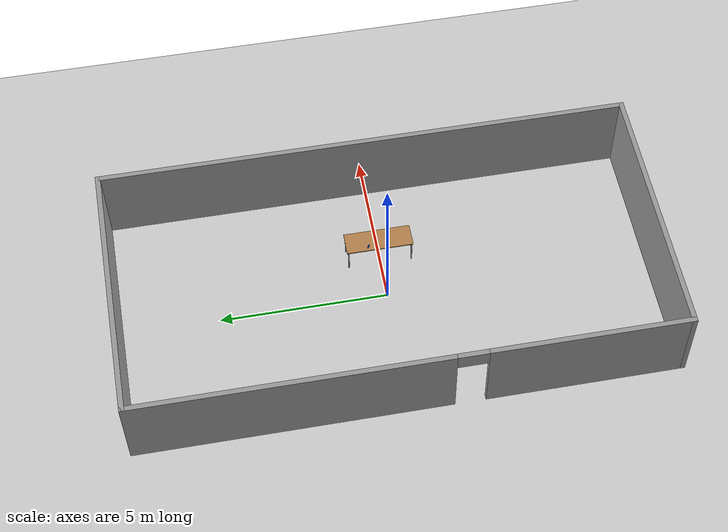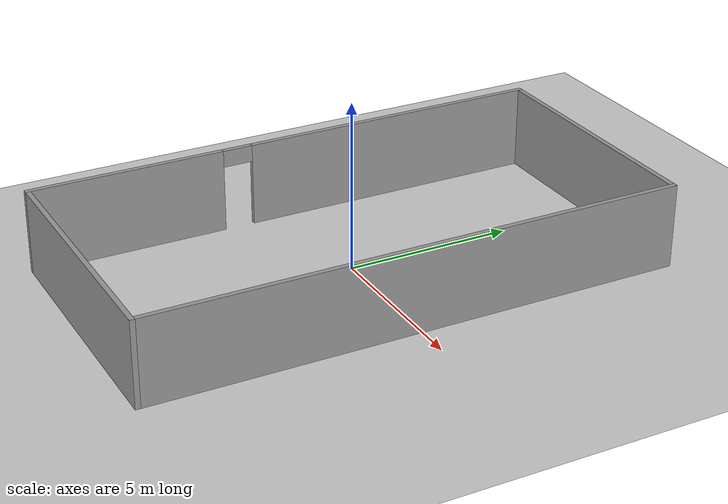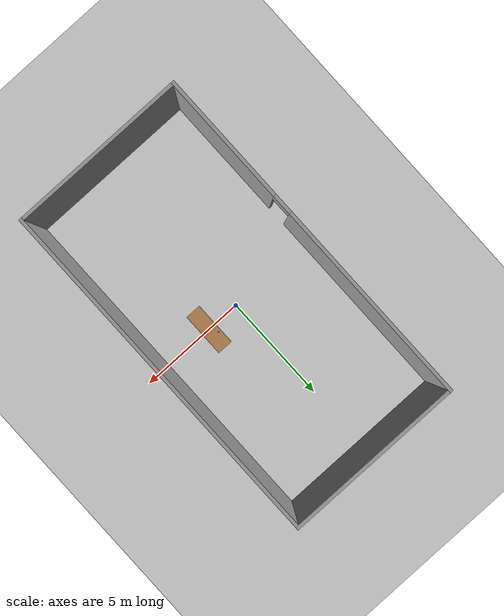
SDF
<sdf version="1.6">
 <world name="default">
  <light name="sun" type="directional">
   <pose>0 0 10 0 -0 0</pose>
   <diffuse>0.8 0.8 0.8 1</diffuse>
   <specular>0.2 0.2 0.2 1</specular>
   <attenuation>
    <range>1000</range>
    <constant>0.9</constant>
    <linear>0.01</linear>
    <quadratic>0.001</quadratic>
   </attenuation>
   <direction>-0.5 0.1 -0.9</direction>
  </light>
  <model name="unit_box_0">
   <pose>1.267714 0.338958 0.833 0 0 0.866846</pose>
   <static>false</static>
   <link name="link">
    <inertial>
     <mass>0.2</mass>
     <inertia>
      <ixx>2.1248e-04</ixx>
      <ixy>0.0</ixy>
      <ixz>0.0</ixz>
      <iyy>1.3149e-04</iyy>
      <iyz>0.0</iyz>
      <izz>1.3149e-04</izz>
     </inertia>
    </inertial>
    <collision name="collision">
     <geometry><box><size>0.025 0.08 0.08</size></box></geometry>
     <surface>
      <contact><ode><soft_cfm>0.2</soft_cfm><soft_erp>0.2</soft_erp><kp>1e5</kp><kd>1.0</kd></ode></contact>
      <friction><ode><mu>1e10</mu><mu2>1e10</mu2><fdir1>0.000000 0.000000 1.000000</fdir1></ode></friction>
      <contact><ode><max_vel>0.1</max_vel><min_depth>0.001</min_depth></ode></contact>
     </surface>
    </collision>
    <visual name="visual">
     <geometry><box><size>0.025 0.08 0.08</size></box></geometry>
     <material>
      <script><uri>file://media/materials/scripts/gazebo.material</uri><name>Gazebo/Blue</name></script>
     </material>
    </visual>
   </link>
  </model>
  <model name="table">
   <pose>1.5 0.0 0 0 0 0</pose>
   <static>true</static>
   <link name="link">
    <collision name="surface">
     <pose>0 0 0.778 0 0 0</pose>
     <geometry><box><size>0.7 2.0 0.03</size></box></geometry>
     <surface><friction><ode><mu>10</mu><mu2>10</mu2></ode></friction></surface>
    </collision>
    <visual name="visual1">
     <pose>0 0 0.778 0 0 0</pose>
     <geometry><box><size>0.7 2.0 0.03</size></box></geometry>
     <material>
      <script><uri>file://media/materials/scripts/gazebo.material</uri><name>Gazebo/Wood</name></script>
     </material>
    </visual>
    <collision name="front_left_leg">
     <pose>0.3 0.95 0.3815 0 0 0</pose>
     <geometry><cylinder><radius>0.02</radius><length>0.763</length></cylinder></geometry>
    </collision>
    <visual name="front_left_leg">
     <pose>0.3 0.95 0.3815 0 0 0</pose>
     <geometry><cylinder><radius>0.02</radius><length>0.763</length></cylinder></geometry>
     <material>
      <script><uri>file://media/materials/scripts/gazebo.material</uri><name>Gazebo/Grey</name></script>
     </material>
    </visual>
    <collision name="front_right_leg">
     <pose>0.3 -0.95 0.3815 0 0 0</pose>
     <geometry><cylinder><radius>0.02</radius><length>0.763</length></cylinder></geometry>
    </collision>
    <visual name="front_right_leg">
     <pose>0.3 -0.95 0.3815 0 0 0</pose>
     <geometry><cylinder><radius>0.02</radius><length>0.763</length></cylinder></geometry>
     <material>
      <script><uri>file://media/materials/scripts/gazebo.material</uri><name>Gazebo/Grey</name></script>
     </material>
    </visual>
    <collision name="back_right_leg">
     <pose>-0.3 -0.95 0.3815 0 0 0</pose>
     <geometry><cylinder><radius>0.02</radius><length>0.763</length></cylinder></geometry>
    </collision>
    <visual name="back_right_leg">
     <pose>-0.3 -0.95 0.3815 0 0 0</pose>
     <geometry><cylinder><radius>0.02</radius><length>0.763</length></cylinder></geometry>
     <material>
      <script><uri>file://media/materials/scripts/gazebo.material</uri><name>Gazebo/Grey</name></script>
     </material>
    </visual>
    <collision name="back_left_leg">
     <pose>-0.3 0.95 0.3815 0 0 0</pose>
     <geometry><cylinder><radius>0.02</radius><length>0.763</length></cylinder></geometry>
    </collision>
    <visual name="back_left_leg">
     <pose>-0.3 0.95 0.3815 0 0 0</pose>
     <geometry><cylinder><radius>0.02</radius><length>0.763</length></cylinder></geometry>
     <material>
      <script><uri>file://media/materials/scripts/gazebo.material</uri><name>Gazebo/Grey</name></script>
     </material>
    </visual>
   </link>
  </model>
  <model name="ground_plane">
   <static>1</static>
   <link name="link">
    <collision name="collision">
     <geometry><plane><normal>0 0 1</normal><size>100 100</size></plane></geometry>
     <surface>
      <contact><collide_bitmask>65535</collide_bitmask></contact>
      <friction><ode><mu>100</mu><mu2>50</mu2></ode></friction>
     </surface>
    </collision>
    <visual name="visual">
     <cast_shadows>0</cast_shadows>
     <geometry><plane><normal>0 0 1</normal><size>100 100</size></plane></geometry>
     <material>
      <script><uri>file://media/materials/scripts/gazebo.material</uri><name>Gazebo/Grey</name></script>
     </material>
    </visual>
   </link>
  </model>
  <gravity>0 0 -9.8</gravity>
  <magnetic_field>6e-06 2.3e-05 -4.2e-05</magnetic_field>
  <atmosphere type="adiabatic"/>
  <physics name="default_physics" default="0" type="ode">
   <max_step_size>0.001</max_step_size>
   <real_time_factor>1</real_time_factor>
   <real_time_update_rate>1000</real_time_update_rate>
   <max_step_size>0.001</max_step_size>
   <gravity>0.0 0.0 -9.81</gravity>
   <ode><solver><type>quick</type><iters>500</iters></solver></ode>
  </physics>
  <scene><ambient>0.4 0.4 0.4 1</ambient><background>0.7 0.7 0.7 1</background><shadows>1</shadows></scene>
  <spherical_coordinates>
   <surface_model>EARTH_WGS84</surface_model>
   <latitude_deg>0</latitude_deg>
   <longitude_deg>0</longitude_deg>
   <elevation>0</elevation>
   <heading_deg>0</heading_deg>
  </spherical_coordinates>
  <model name="RPL-Lab">
   <link name="Wall_19">
    <pose>-3.925 0 0 0 -0 1.5708</pose>
    <visual name="Wall_19_Visual_0">
     <pose>-5.06455 0 1.25 0 -0 0</pose>
     <geometry><box><size>5.87091 0.15 2.5</size></box></geometry>
     <material>
      <script><uri>file://media/materials/scripts/gazebo.material</uri><name>Gazebo/Grey</name></script>
      <ambient>1 1 1 1</ambient>
     </material>
     <meta><layer>0</layer></meta>
    </visual>
    <collision name="Wall_19_Collision_0">
     <geometry><box><size>5.87091 0.15 2.5</size></box></geometry>
     <pose>-5.06455 0 1.25 0 -0 0</pose>
    </collision>
    <visual name="Wall_19_Visual_1">
     <pose>3.38545 0 1.25 0 -0 0</pose>
     <geometry><box><size>9.22909 0.15 2.5</size></box></geometry>
     <material>
      <script><uri>file://media/materials/scripts/gazebo.material</uri><name>Gazebo/Grey</name></script>
      <ambient>1 1 1 1</ambient>
     </material>
     <meta><layer>0</layer></meta>
    </visual>
    <collision name="Wall_19_Collision_1">
     <geometry><box><size>9.22909 0.15 2.5</size></box></geometry>
     <pose>3.38545 0 1.25 0 -0 0</pose>
    </collision>
    <visual name="Wall_19_Visual_2">
     <pose>-1.67909 0 2.25 0 -0 0</pose>
     <geometry><box><size>0.9 0.15 0.5</size></box></geometry>
     <material>
      <script><uri>file://media/materials/scripts/gazebo.material</uri><name>Gazebo/Grey</name></script>
      <ambient>1 1 1 1</ambient>
     </material>
     <meta><layer>0</layer></meta>
    </visual>
    <collision name="Wall_19_Collision_2">
     <geometry><box><size>0.9 0.15 0.5</size></box></geometry>
     <pose>-1.67909 0 2.25 0 -0 0</pose>
    </collision>
   </link>
   <link name="Wall_25">
    <collision name="Wall_25_Collision">
     <geometry><box><size>8 0.15 2.5</size></box></geometry>
     <pose>0 0 1.25 0 -0 0</pose>
    </collision>
    <visual name="Wall_25_Visual">
     <pose>0 0 1.25 0 -0 0</pose>
     <geometry><box><size>8 0.15 2.5</size></box></geometry>
     <material>
      <script><uri>file://media/materials/scripts/gazebo.material</uri><name>Gazebo/Grey</name></script>
      <ambient>1 1 1 1</ambient>
     </material>
     <meta><layer>0</layer></meta>
    </visual>
    <pose>0 7.925 0 0 -0 0</pose>
   </link>
   <link name="Wall_27">
    <collision name="Wall_27_Collision">
     <geometry><box><size>16 0.15 2.5</size></box></geometry>
     <pose>0 0 1.25 0 -0 0</pose>
    </collision>
    <visual name="Wall_27_Visual">
     <pose>0 0 1.25 0 -0 0</pose>
     <geometry><box><size>16 0.15 2.5</size></box></geometry>
     <material>
      <script><uri>file://media/materials/scripts/gazebo.material</uri><name>Gazebo/Grey</name></script>
      <ambient>1 1 1 1</ambient>
     </material>
     <meta><layer>0</layer></meta>
    </visual>
    <pose>3.925 0 0 0 0 -1.5708</pose>
   </link>
   <link name="Wall_29">
    <collision name="Wall_29_Collision">
     <geometry><box><size>8 0.15 2.5</size></box></geometry>
     <pose>0 0 1.25 0 -0 0</pose>
    </collision>
    <visual name="Wall_29_Visual">
     <pose>0 0 1.25 0 -0 0</pose>
     <geometry><box><size>8 0.15 2.5</size></box></geometry>
     <material>
      <script><uri>file://media/materials/scripts/gazebo.material</uri><name>Gazebo/Grey</name></script>
      <ambient>1 1 1 1</ambient>
     </material>
     <meta><layer>0</layer></meta>
    </visual>
    <pose>0 -7.925 0 0 -0 3.14159</pose>
   </link>
   <static>1</static>
  </model>
 </world>
</sdf>
